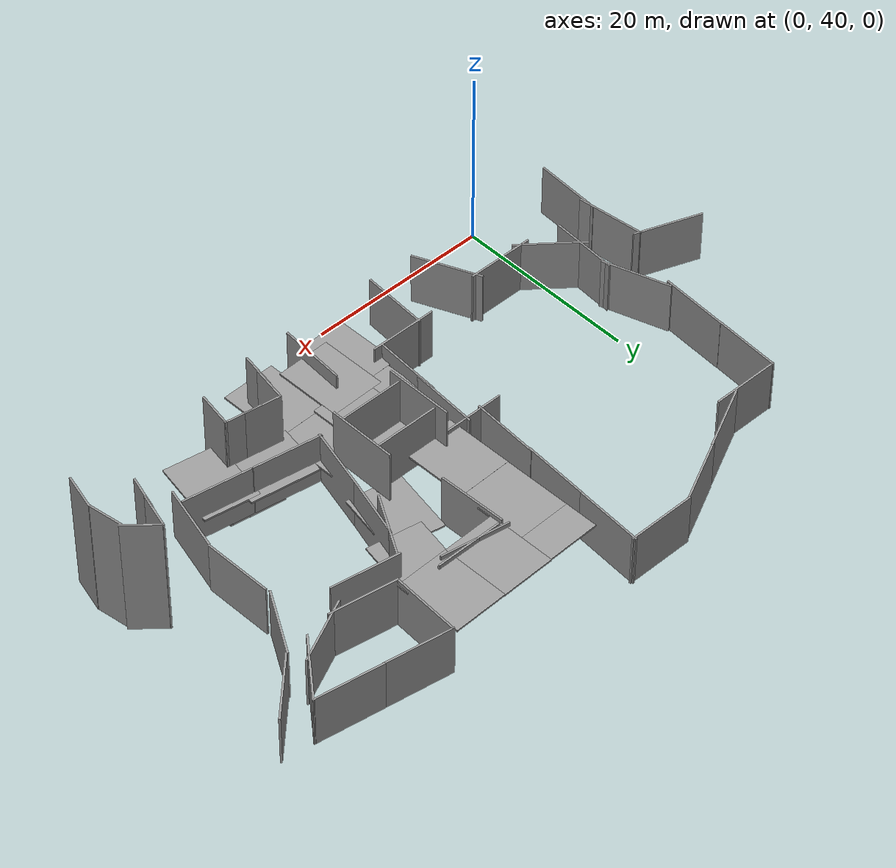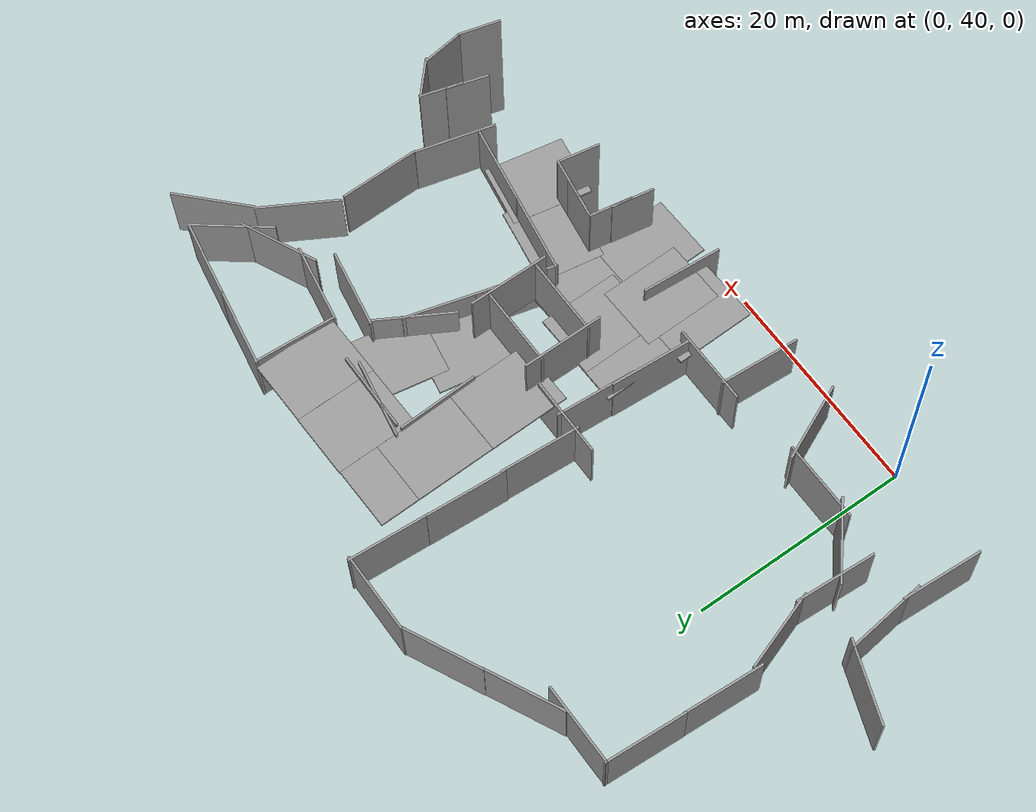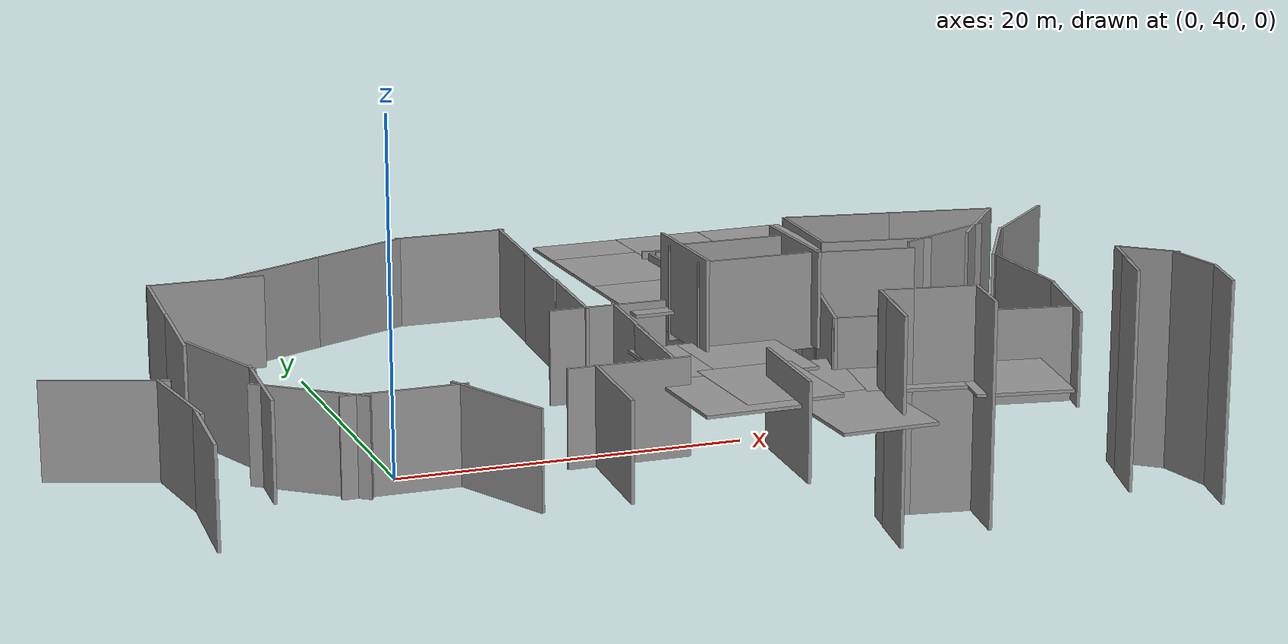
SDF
<sdf version="1.7">
 <world name="default">
  <model name="grey_wall_4">
   <static>1</static>
   <link name="link">
    <pose>0 0 1.4 0 -0 0</pose>
    <collision name="collision"><geometry><box><size>7.5 0.2 6</size></box></geometry></collision>
    <visual name="visual">
     <cast_shadows>0</cast_shadows>
     <geometry><box><size>7.5 0.2 6</size></box></geometry>
     <material>
      <script>
       <uri>model://grey_wall/materials/scripts</uri>
       <uri>model://grey_wall/materials/textures</uri>
       <name>vrc/grey_wall</name>
      </script>
     </material>
    </visual>
   </link>
   <pose>16.0009 47.1151 -1.36031 0 -0 0</pose>
  </model>
  <model name="grey_wall_4_clone">
   <static>1</static>
   <link name="link">
    <pose>0 0 1.4 0 -0 0</pose>
    <collision name="collision"><geometry><box><size>7.5 0.2 6</size></box></geometry></collision>
    <visual name="visual">
     <cast_shadows>0</cast_shadows>
     <geometry><box><size>7.5 0.2 6</size></box></geometry>
     <material>
      <script>
       <uri>model://grey_wall/materials/scripts</uri>
       <uri>model://grey_wall/materials/textures</uri>
       <name>vrc/grey_wall</name>
      </script>
     </material>
    </visual>
   </link>
   <pose>19.1102 59.5367 -1.36031 0 -0 0</pose>
  </model>
  <model name="grey_wall_4_clone_1">
   <static>1</static>
   <link name="link">
    <pose>0 0 1.4 0 -0 0</pose>
    <collision name="collision"><geometry><box><size>7.5 0.2 6</size></box></geometry></collision>
    <visual name="visual">
     <cast_shadows>0</cast_shadows>
     <geometry><box><size>7.5 0.2 6</size></box></geometry>
     <material>
      <script>
       <uri>model://grey_wall/materials/scripts</uri>
       <uri>model://grey_wall/materials/textures</uri>
       <name>vrc/grey_wall</name>
      </script>
     </material>
    </visual>
   </link>
   <pose>2.43285 46.2968 -1.36031 0 -0 0</pose>
  </model>
  <model name="grey_wall_4_clone_2">
   <static>1</static>
   <link name="link">
    <pose>0 0 1.4 0 -0 0</pose>
    <collision name="collision"><geometry><box><size>7.5 0.2 6</size></box></geometry></collision>
    <visual name="visual">
     <cast_shadows>0</cast_shadows>
     <geometry><box><size>7.5 0.2 6</size></box></geometry>
     <material>
      <script>
       <uri>model://grey_wall/materials/scripts</uri>
       <uri>model://grey_wall/materials/textures</uri>
       <name>vrc/grey_wall</name>
      </script>
     </material>
    </visual>
   </link>
   <pose>15.4871 80.6091 -1.36031 0 -0 0</pose>
  </model>
  <model name="grey_wall_4_clone_3">
   <static>1</static>
   <link name="link">
    <pose>0 0 1.4 0 -0 0</pose>
    <collision name="collision"><geometry><box><size>7.5 0.2 6</size></box></geometry></collision>
    <visual name="visual">
     <cast_shadows>0</cast_shadows>
     <geometry><box><size>7.5 0.2 6</size></box></geometry>
     <material>
      <script>
       <uri>model://grey_wall/materials/scripts</uri>
       <uri>model://grey_wall/materials/textures</uri>
       <name>vrc/grey_wall</name>
      </script>
     </material>
    </visual>
   </link>
   <pose>8.62408 78.9708 -1.36031 0 -0 0.453296</pose>
  </model>
  <model name="grey_wall_4_clone_4">
   <static>1</static>
   <link name="link">
    <pose>0 0 1.4 0 -0 0</pose>
    <collision name="collision"><geometry><box><size>7.5 0.2 6</size></box></geometry></collision>
    <visual name="visual">
     <cast_shadows>0</cast_shadows>
     <geometry><box><size>7.5 0.2 6</size></box></geometry>
     <material>
      <script>
       <uri>model://grey_wall/materials/scripts</uri>
       <uri>model://grey_wall/materials/textures</uri>
       <name>vrc/grey_wall</name>
      </script>
     </material>
    </visual>
   </link>
   <pose>-2.54891 74.0503 -1.36031 0 -0 0</pose>
  </model>
  <model name="grey_wall_4_clone_5">
   <static>1</static>
   <link name="link">
    <pose>0 0 1.4 0 -0 0</pose>
    <collision name="collision"><geometry><box><size>7.5 0.2 6</size></box></geometry></collision>
    <visual name="visual">
     <cast_shadows>0</cast_shadows>
     <geometry><box><size>7.5 0.2 6</size></box></geometry>
     <material>
      <script>
       <uri>model://grey_wall/materials/scripts</uri>
       <uri>model://grey_wall/materials/textures</uri>
       <name>vrc/grey_wall</name>
      </script>
     </material>
    </visual>
   </link>
   <pose>18.7594 77.124 -1.36031 0 0 -1.63235</pose>
  </model>
  <model name="grey_wall_4_clone_5_clone">
   <static>1</static>
   <link name="link">
    <pose>0 0 1.4 0 -0 0</pose>
    <collision name="collision"><geometry><box><size>7.5 0.2 6</size></box></geometry></collision>
    <visual name="visual">
     <cast_shadows>0</cast_shadows>
     <geometry><box><size>7.5 0.2 6</size></box></geometry>
     <material>
      <script>
       <uri>model://grey_wall/materials/scripts</uri>
       <uri>model://grey_wall/materials/textures</uri>
       <name>vrc/grey_wall</name>
      </script>
     </material>
    </visual>
   </link>
   <pose>18.2913 69.9734 -1.36031 0 0 -1.63235</pose>
  </model>
  <model name="grey_wall_4_clone_5_clone_0">
   <static>1</static>
   <link name="link">
    <pose>0 0 1.4 0 -0 0</pose>
    <collision name="collision"><geometry><box><size>7.5 0.2 6</size></box></geometry></collision>
    <visual name="visual">
     <cast_shadows>0</cast_shadows>
     <geometry><box><size>7.5 0.2 6</size></box></geometry>
     <material>
      <script>
       <uri>model://grey_wall/materials/scripts</uri>
       <uri>model://grey_wall/materials/textures</uri>
       <name>vrc/grey_wall</name>
      </script>
     </material>
    </visual>
   </link>
   <pose>17.9317 62.9217 -1.36031 0 0 -1.63235</pose>
  </model>
  <model name="grey_wall_4_clone_5_clone_1">
   <static>1</static>
   <link name="link">
    <pose>0 0 1.4 0 -0 0</pose>
    <collision name="collision"><geometry><box><size>7.5 0.2 6</size></box></geometry></collision>
    <visual name="visual">
     <cast_shadows>0</cast_shadows>
     <geometry><box><size>7.5 0.2 6</size></box></geometry>
     <material>
      <script>
       <uri>model://grey_wall/materials/scripts</uri>
       <uri>model://grey_wall/materials/textures</uri>
       <name>vrc/grey_wall</name>
      </script>
     </material>
    </visual>
   </link>
   <pose>18.9558 50.955 -1.36031 0 0 -1.63235</pose>
  </model>
  <model name="grey_wall_4_clone_5_clone_2">
   <static>1</static>
   <link name="link">
    <pose>0 0 1.4 0 -0 0</pose>
    <collision name="collision"><geometry><box><size>7.5 0.2 6</size></box></geometry></collision>
    <visual name="visual">
     <cast_shadows>0</cast_shadows>
     <geometry><box><size>7.5 0.2 6</size></box></geometry>
     <material>
      <script>
       <uri>model://grey_wall/materials/scripts</uri>
       <uri>model://grey_wall/materials/textures</uri>
       <name>vrc/grey_wall</name>
      </script>
     </material>
    </visual>
   </link>
   <pose>19.3647 56.2613 -1.36031 0 0 -1.63235</pose>
  </model>
  <model name="grey_wall_4_clone_5_clone_3">
   <static>1</static>
   <link name="link">
    <pose>0 0 1.4 0 -0 0</pose>
    <collision name="collision"><geometry><box><size>7.5 0.2 6</size></box></geometry></collision>
    <visual name="visual">
     <cast_shadows>0</cast_shadows>
     <geometry><box><size>7.5 0.2 6</size></box></geometry>
     <material>
      <script>
       <uri>model://grey_wall/materials/scripts</uri>
       <uri>model://grey_wall/materials/textures</uri>
       <name>vrc/grey_wall</name>
      </script>
     </material>
    </visual>
   </link>
   <pose>13.8066 43.613 -1.36031 0 0 -1.63235</pose>
  </model>
  <model name="grey_wall_4_clone_5_clone_4">
   <static>1</static>
   <link name="link">
    <pose>0 0 1.4 0 -0 0</pose>
    <collision name="collision"><geometry><box><size>7.5 0.2 6</size></box></geometry></collision>
    <visual name="visual">
     <cast_shadows>0</cast_shadows>
     <geometry><box><size>7.5 0.2 6</size></box></geometry>
     <material>
      <script>
       <uri>model://grey_wall/materials/scripts</uri>
       <uri>model://grey_wall/materials/textures</uri>
       <name>vrc/grey_wall</name>
      </script>
     </material>
    </visual>
   </link>
   <pose>6.91976 43.5617 -1.36031 0 0 -1.15044</pose>
  </model>
  <model name="grey_wall_4_clone_5_clone_5">
   <static>1</static>
   <link name="link">
    <pose>0 0 1.4 0 -0 0</pose>
    <collision name="collision"><geometry><box><size>7.5 0.2 6</size></box></geometry></collision>
    <visual name="visual">
     <cast_shadows>0</cast_shadows>
     <geometry><box><size>7.5 0.2 6</size></box></geometry>
     <material>
      <script>
       <uri>model://grey_wall/materials/scripts</uri>
       <uri>model://grey_wall/materials/textures</uri>
       <name>vrc/grey_wall</name>
      </script>
     </material>
    </visual>
   </link>
   <pose>-6.39185 70.4672 -1.36031 0 0 -1.63235</pose>
  </model>
  <model name="grey_wall_4_clone_5_clone_6">
   <static>1</static>
   <link name="link">
    <pose>0 0 1.4 0 -0 0</pose>
    <collision name="collision"><geometry><box><size>7.5 0.2 6</size></box></geometry></collision>
    <visual name="visual">
     <cast_shadows>0</cast_shadows>
     <geometry><box><size>7.5 0.2 6</size></box></geometry>
     <material>
      <script>
       <uri>model://grey_wall/materials/scripts</uri>
       <uri>model://grey_wall/materials/textures</uri>
       <name>vrc/grey_wall</name>
      </script>
     </material>
    </visual>
   </link>
   <pose>-6.80635 63.2942 -1.36031 0 0 -1.63235</pose>
  </model>
  <model name="grey_wall_4_clone_5_clone_7">
   <static>1</static>
   <link name="link">
    <pose>0 0 1.4 0 -0 0</pose>
    <collision name="collision"><geometry><box><size>7.5 0.2 6</size></box></geometry></collision>
    <visual name="visual">
     <cast_shadows>0</cast_shadows>
     <geometry><box><size>7.5 0.2 6</size></box></geometry>
     <material>
      <script>
       <uri>model://grey_wall/materials/scripts</uri>
       <uri>model://grey_wall/materials/textures</uri>
       <name>vrc/grey_wall</name>
      </script>
     </material>
    </visual>
   </link>
   <pose>-5.58672 56.7985 -1.36031 0 0 -1.24275</pose>
  </model>
  <model name="grey_wall_4_clone_5_clone_8">
   <static>1</static>
   <link name="link">
    <pose>0 0 1.4 0 -0 0</pose>
    <collision name="collision"><geometry><box><size>7.5 0.2 6</size></box></geometry></collision>
    <visual name="visual">
     <cast_shadows>0</cast_shadows>
     <geometry><box><size>7.5 0.2 6</size></box></geometry>
     <material>
      <script>
       <uri>model://grey_wall/materials/scripts</uri>
       <uri>model://grey_wall/materials/textures</uri>
       <name>vrc/grey_wall</name>
      </script>
     </material>
    </visual>
   </link>
   <pose>-4.72145 50.5528 -1.36031 0 0 -1.63235</pose>
  </model>
  <model name="grey_wall_4_clone_5_clone_9">
   <static>1</static>
   <link name="link">
    <pose>0 0 1.4 0 -0 0</pose>
    <collision name="collision"><geometry><box><size>7.5 0.2 6</size></box></geometry></collision>
    <visual name="visual">
     <cast_shadows>0</cast_shadows>
     <geometry><box><size>7.5 0.2 6</size></box></geometry>
     <material>
      <script>
       <uri>model://grey_wall/materials/scripts</uri>
       <uri>model://grey_wall/materials/textures</uri>
       <name>vrc/grey_wall</name>
      </script>
     </material>
    </visual>
   </link>
   <pose>-2.54426 48.1501 -1.36031 0 0 -0.694859</pose>
  </model>
  <model name="grey_wall_4_clone_5_clone_15">
   <static>1</static>
   <link name="link">
    <pose>0 0 1.4 0 -0 0</pose>
    <collision name="collision"><geometry><box><size>7.5 0.2 6</size></box></geometry></collision>
    <visual name="visual">
     <cast_shadows>0</cast_shadows>
     <geometry><box><size>7.5 0.2 6</size></box></geometry>
     <material>
      <script>
       <uri>model://grey_wall/materials/scripts</uri>
       <uri>model://grey_wall/materials/textures</uri>
       <name>vrc/grey_wall</name>
      </script>
     </material>
    </visual>
   </link>
   <pose>24.4072 43.5806 -1.36031 0 0 -1.63235</pose>
  </model>
  <model name="grey_wall_4_clone_0_clone_0_clone_5">
   <static>1</static>
   <link name="link">
    <pose>0 0 1.4 0 -0 0</pose>
    <collision name="collision"><geometry><box><size>7.5 0.2 6</size></box></geometry></collision>
    <visual name="visual">
     <cast_shadows>0</cast_shadows>
     <geometry><box><size>7.5 0.2 6</size></box></geometry>
     <material>
      <script>
       <uri>model://grey_wall/materials/scripts</uri>
       <uri>model://grey_wall/materials/textures</uri>
       <name>vrc/grey_wall</name>
      </script>
     </material>
    </visual>
   </link>
   <pose>-12.8399 53.9974 -1.36031 0 0 -0.351253</pose>
  </model>
  <model name="grey_wall_4_clone_0_clone_1_clone_1">
   <static>1</static>
   <link name="link">
    <pose>0 0 1.4 0 -0 0</pose>
    <collision name="collision"><geometry><box><size>7.5 0.2 6</size></box></geometry></collision>
    <visual name="visual">
     <cast_shadows>0</cast_shadows>
     <geometry><box><size>7.5 0.2 6</size></box></geometry>
     <material>
      <script>
       <uri>model://grey_wall/materials/scripts</uri>
       <uri>model://grey_wall/materials/textures</uri>
       <name>vrc/grey_wall</name>
      </script>
     </material>
    </visual>
   </link>
   <pose>-9.56386 49.3439 -1.36031 0 0 -1.45172</pose>
  </model>
  <model name="grey_wall_4_clone_5_clone_3_clone">
   <static>1</static>
   <link name="link">
    <pose>0 0 1.4 0 -0 0</pose>
    <collision name="collision"><geometry><box><size>7.5 0.2 6</size></box></geometry></collision>
    <visual name="visual">
     <cast_shadows>0</cast_shadows>
     <geometry><box><size>7.5 0.2 6</size></box></geometry>
     <material>
      <script>
       <uri>model://grey_wall/materials/scripts</uri>
       <uri>model://grey_wall/materials/textures</uri>
       <name>vrc/grey_wall</name>
      </script>
     </material>
    </visual>
   </link>
   <pose>-9.49011 43.6181 -1.36031 0 0 -1.63235</pose>
  </model>
  <model name="grey_wall_4_clone_5_clone_0_clone">
   <static>1</static>
   <link name="link">
    <pose>0 0 1.4 0 -0 0</pose>
    <collision name="collision"><geometry><box><size>7.5 0.2 6</size></box></geometry></collision>
    <visual name="visual">
     <cast_shadows>0</cast_shadows>
     <geometry><box><size>7.5 0.2 6</size></box></geometry>
     <material>
      <script>
       <uri>model://grey_wall/materials/scripts</uri>
       <uri>model://grey_wall/materials/textures</uri>
       <name>vrc/grey_wall</name>
      </script>
     </material>
    </visual>
   </link>
   <pose>46.3083 51.5827 -1.36031 0 0 -1.81447</pose>
  </model>
  <model name="grey_wall_4_clone_5_clone_0_clone_clone">
   <static>1</static>
   <link name="link">
    <pose>0 0 1.4 0 -0 0</pose>
    <collision name="collision"><geometry><box><size>7.5 0.2 6</size></box></geometry></collision>
    <visual name="visual">
     <cast_shadows>0</cast_shadows>
     <geometry><box><size>7.5 0.2 6</size></box></geometry>
     <material>
      <script>
       <uri>model://grey_wall/materials/scripts</uri>
       <uri>model://grey_wall/materials/textures</uri>
       <name>vrc/grey_wall</name>
      </script>
     </material>
    </visual>
   </link>
   <pose>31.8033 55.374 -1.36031 0 0 -1.81447</pose>
  </model>
  <model name="grey_wall_4_clone_5_clone_0_clone_clone_0">
   <static>1</static>
   <link name="link">
    <pose>0 0 1.4 0 -0 0</pose>
    <collision name="collision"><geometry><box><size>7.5 0.2 6</size></box></geometry></collision>
    <visual name="visual">
     <cast_shadows>0</cast_shadows>
     <geometry><box><size>7.5 0.2 6</size></box></geometry>
     <material>
      <script>
       <uri>model://grey_wall/materials/scripts</uri>
       <uri>model://grey_wall/materials/textures</uri>
       <name>vrc/grey_wall</name>
      </script>
     </material>
    </visual>
   </link>
   <pose>33.4296 61.6318 -1.36031 0 0 -1.83467</pose>
  </model>
  <model name="grey_wall_4_clone_5_clone_0_clone_clone_2">
   <static>1</static>
   <link name="link">
    <pose>0 0 1.4 0 -0 0</pose>
    <collision name="collision"><geometry><box><size>7.5 0.2 6</size></box></geometry></collision>
    <visual name="visual">
     <cast_shadows>0</cast_shadows>
     <geometry><box><size>7.5 0.2 6</size></box></geometry>
     <material>
      <script>
       <uri>model://grey_wall/materials/scripts</uri>
       <uri>model://grey_wall/materials/textures</uri>
       <name>vrc/grey_wall</name>
      </script>
     </material>
    </visual>
   </link>
   <pose>48.7352 66.2029 -1.36031 0 0 -2.08831</pose>
  </model>
  <model name="grey_wall_4_clone_5_clone_0_clone_clone_0_clone">
   <static>1</static>
   <link name="link">
    <pose>0 0 1.4 0 -0 0</pose>
    <collision name="collision"><geometry><box><size>7.5 0.2 6</size></box></geometry></collision>
    <visual name="visual">
     <cast_shadows>0</cast_shadows>
     <geometry><box><size>7.5 0.2 6</size></box></geometry>
     <material>
      <script>
       <uri>model://grey_wall/materials/scripts</uri>
       <uri>model://grey_wall/materials/textures</uri>
       <name>vrc/grey_wall</name>
      </script>
     </material>
    </visual>
   </link>
   <pose>47.1665 58.9116 -1.36031 0 0 -1.54099</pose>
  </model>
  <model name="grey_wall_4_clone_5_clone_0_clone_clone_1_clone_0">
   <static>1</static>
   <link name="link">
    <pose>0 0 1.4 0 -0 0</pose>
    <collision name="collision"><geometry><box><size>7.5 0.2 6</size></box></geometry></collision>
    <visual name="visual">
     <cast_shadows>0</cast_shadows>
     <geometry><box><size>7.5 0.2 6</size></box></geometry>
     <material>
      <script>
       <uri>model://grey_wall/materials/scripts</uri>
       <uri>model://grey_wall/materials/textures</uri>
       <name>vrc/grey_wall</name>
      </script>
     </material>
    </visual>
   </link>
   <pose>34.4569 51.3738 -1.36031 0 -0 2.97634</pose>
  </model>
  <model name="grey_wall_4_clone_5_clone_0_clone_clone_1_clone_1">
   <static>1</static>
   <link name="link">
    <pose>0 0 1.4 0 -0 0</pose>
    <collision name="collision"><geometry><box><size>7.5 0.2 6</size></box></geometry></collision>
    <visual name="visual">
     <cast_shadows>0</cast_shadows>
     <geometry><box><size>7.5 0.2 6</size></box></geometry>
     <material>
      <script>
       <uri>model://grey_wall/materials/scripts</uri>
       <uri>model://grey_wall/materials/textures</uri>
       <name>vrc/grey_wall</name>
      </script>
     </material>
    </visual>
   </link>
   <pose>41.9347 50.1282 -1.36031 0 -0 2.97634</pose>
  </model>
  <model name="grey_wall_4_clone_5_clone_0_clone_clone_1_clone_clone">
   <static>1</static>
   <link name="link">
    <pose>0 0 1.4 0 -0 0</pose>
    <collision name="collision"><geometry><box><size>7.5 0.2 6</size></box></geometry></collision>
    <visual name="visual">
     <cast_shadows>0</cast_shadows>
     <geometry><box><size>7.5 0.2 6</size></box></geometry>
     <material>
      <script>
       <uri>model://grey_wall/materials/scripts</uri>
       <uri>model://grey_wall/materials/textures</uri>
       <name>vrc/grey_wall</name>
      </script>
     </material>
    </visual>
   </link>
   <pose>48.8616 75.4431 -1.36031 0 -0 2.97634</pose>
  </model>
  <model name="grey_wall_4_clone_5_clone_0_clone_clone_1_clone_clone_0">
   <static>1</static>
   <link name="link">
    <pose>0 0 1.4 0 -0 0</pose>
    <collision name="collision"><geometry><box><size>7.5 0.2 6</size></box></geometry></collision>
    <visual name="visual">
     <cast_shadows>0</cast_shadows>
     <geometry><box><size>7.5 0.2 6</size></box></geometry>
     <material>
      <script>
       <uri>model://grey_wall/materials/scripts</uri>
       <uri>model://grey_wall/materials/textures</uri>
       <name>vrc/grey_wall</name>
      </script>
     </material>
    </visual>
   </link>
   <pose>41.6947 76.6235 -1.36031 0 -0 2.97634</pose>
  </model>
  <model name="grey_wall_4_clone_5_clone_0_clone_clone_3">
   <static>1</static>
   <link name="link">
    <pose>0 0 1.4 0 -0 0</pose>
    <collision name="collision"><geometry><box><size>7.5 0.2 6</size></box></geometry></collision>
    <visual name="visual">
     <cast_shadows>0</cast_shadows>
     <geometry><box><size>7.5 0.2 6</size></box></geometry>
     <material>
      <script>
       <uri>model://grey_wall/materials/scripts</uri>
       <uri>model://grey_wall/materials/textures</uri>
       <name>vrc/grey_wall</name>
      </script>
     </material>
    </visual>
   </link>
   <pose>37.965 73.5414 -1.36031 0 0 -1.61772</pose>
  </model>
  <model name="grey_wall_4_clone_5_clone_0_clone_clone_1_clone_clone_0_clone">
   <static>1</static>
   <link name="link">
    <pose>0 0 1.4 0 -0 0</pose>
    <collision name="collision"><geometry><box><size>7.5 0.2 6</size></box></geometry></collision>
    <visual name="visual">
     <cast_shadows>0</cast_shadows>
     <geometry><box><size>7.5 0.2 6</size></box></geometry>
     <material>
      <script>
       <uri>model://grey_wall/materials/scripts</uri>
       <uri>model://grey_wall/materials/textures</uri>
       <name>vrc/grey_wall</name>
      </script>
     </material>
    </visual>
   </link>
   <pose>41.355 69.1346 -1.36031 0 -0 2.97634</pose>
  </model>
  <model name="grey_wall_4_clone_5_clone_0_clone_clone_0_clone_0">
   <static>1</static>
   <link name="link">
    <pose>0 0 1.4 0 -0 0</pose>
    <collision name="collision"><geometry><box><size>7.5 0.2 6</size></box></geometry></collision>
    <visual name="visual">
     <cast_shadows>0</cast_shadows>
     <geometry><box><size>7.5 0.2 6</size></box></geometry>
     <material>
      <script>
       <uri>model://grey_wall/materials/scripts</uri>
       <uri>model://grey_wall/materials/textures</uri>
       <name>vrc/grey_wall</name>
      </script>
     </material>
    </visual>
   </link>
   <pose>50.2087 71.9552 -1.36031 0 0 -2.23222</pose>
  </model>
  <model name="grey_wall_4_clone_5_clone_0_clone_clone_0_clone_1">
   <static>1</static>
   <link name="link">
    <pose>0 0 1.4 0 -0 0</pose>
    <collision name="collision"><geometry><box><size>7.5 0.2 6</size></box></geometry></collision>
    <visual name="visual">
     <cast_shadows>0</cast_shadows>
     <geometry><box><size>7.5 0.2 6</size></box></geometry>
     <material>
      <script>
       <uri>model://grey_wall/materials/scripts</uri>
       <uri>model://grey_wall/materials/textures</uri>
       <name>vrc/grey_wall</name>
      </script>
     </material>
    </visual>
   </link>
   <pose>46.5803 69.5804 -1.36031 0 0 -2.70486</pose>
  </model>
  <model name="grey_wall_5_clone_0_clone_clone_1">
   <static>1</static>
   <link name="link">
    <pose>0 0 1.4 0 -0 0</pose>
    <collision name="collision"><geometry><box><size>4 0.2 14</size></box></geometry></collision>
    <visual name="visual">
     <cast_shadows>0</cast_shadows>
     <geometry><box><size>4 0.2 14</size></box></geometry>
     <material>
      <script>
       <uri>model://grey_wall/materials/scripts</uri>
       <uri>model://grey_wall/materials/textures</uri>
       <name>vrc/grey_wall</name>
      </script>
     </material>
    </visual>
   </link>
   <pose>35.9221 47.0435 -2.67193 0 0 -0.158292</pose>
  </model>
  <model name="grey_wall_5_clone_0_clone_clone_2">
   <static>1</static>
   <link name="link">
    <pose>0 0 1.4 0 -0 0</pose>
    <collision name="collision"><geometry><box><size>4 0.2 14</size></box></geometry></collision>
    <visual name="visual">
     <cast_shadows>0</cast_shadows>
     <geometry><box><size>4 0.2 14</size></box></geometry>
     <material>
      <script>
       <uri>model://grey_wall/materials/scripts</uri>
       <uri>model://grey_wall/materials/textures</uri>
       <name>vrc/grey_wall</name>
      </script>
     </material>
    </visual>
   </link>
   <pose>33.8085 47.3815 -2.67193 0 0 -0.158292</pose>
  </model>
  <model name="grey_wall_5_clone_0_clone_0_clone_clone">
   <static>1</static>
   <link name="link">
    <pose>0 0 1.4 0 -0 0</pose>
    <collision name="collision"><geometry><box><size>4 0.2 14</size></box></geometry></collision>
    <visual name="visual">
     <cast_shadows>0</cast_shadows>
     <geometry><box><size>4 0.2 14</size></box></geometry>
     <material>
      <script>
       <uri>model://grey_wall/materials/scripts</uri>
       <uri>model://grey_wall/materials/textures</uri>
       <name>vrc/grey_wall</name>
      </script>
     </material>
    </visual>
   </link>
   <pose>37.4748 44.8738 -2.67193 0 -0 1.40604</pose>
  </model>
  <model name="grey_wall_5_clone_0_clone_0_clone_clone_1">
   <static>1</static>
   <link name="link">
    <pose>0 0 1.4 0 -0 0</pose>
    <collision name="collision"><geometry><box><size>4 0.2 14</size></box></geometry></collision>
    <visual name="visual">
     <cast_shadows>0</cast_shadows>
     <geometry><box><size>4 0.2 14</size></box></geometry>
     <material>
      <script>
       <uri>model://grey_wall/materials/scripts</uri>
       <uri>model://grey_wall/materials/textures</uri>
       <name>vrc/grey_wall</name>
      </script>
     </material>
    </visual>
   </link>
   <pose>31.6023 45.7282 -2.67193 0 -0 1.40604</pose>
  </model>
  <model name="grey_wall_5_clone_0_clone_0_clone_clone_2">
   <static>1</static>
   <link name="link">
    <pose>0 0 1.4 0 -0 0</pose>
    <collision name="collision"><geometry><box><size>4 0.2 14</size></box></geometry></collision>
    <visual name="visual">
     <cast_shadows>0</cast_shadows>
     <geometry><box><size>4 0.2 14</size></box></geometry>
     <material>
      <script>
       <uri>model://grey_wall/materials/scripts</uri>
       <uri>model://grey_wall/materials/textures</uri>
       <name>vrc/grey_wall</name>
      </script>
     </material>
    </visual>
   </link>
   <pose>31.2212 43.756 -2.67193 0 -0 1.40604</pose>
  </model>
  <model name="grey_wall_5_clone_0_clone_0_clone_clone_0_clone_1">
   <static>1</static>
   <link name="link">
    <pose>0 0 1.4 0 -0 0</pose>
    <collision name="collision"><geometry><box><size>4 0.2 14</size></box></geometry></collision>
    <visual name="visual">
     <cast_shadows>0</cast_shadows>
     <geometry><box><size>4 0.2 14</size></box></geometry>
     <material>
      <script>
       <uri>model://grey_wall/materials/scripts</uri>
       <uri>model://grey_wall/materials/textures</uri>
       <name>vrc/grey_wall</name>
      </script>
     </material>
    </visual>
   </link>
   <pose>48.9326 48.3638 -2.67193 0 -0 1.30147</pose>
  </model>
  <model name="grey_wall_5_clone_0_clone_0_clone_clone_0_clone_2">
   <static>1</static>
   <link name="link">
    <pose>0 0 1.4 0 -0 0</pose>
    <collision name="collision"><geometry><box><size>4 0.2 14</size></box></geometry></collision>
    <visual name="visual">
     <cast_shadows>0</cast_shadows>
     <geometry><box><size>4 0.2 14</size></box></geometry>
     <material>
      <script>
       <uri>model://grey_wall/materials/scripts</uri>
       <uri>model://grey_wall/materials/textures</uri>
       <name>vrc/grey_wall</name>
      </script>
     </material>
    </visual>
   </link>
   <pose>49.6105 50.6394 -2.67193 0 -0 1.30662</pose>
  </model>
  <model name="grey_wall_5_clone_0_clone_0_clone_clone_0_clone_3">
   <static>1</static>
   <link name="link">
    <pose>0 0 1.4 0 -0 0</pose>
    <collision name="collision"><geometry><box><size>4 0.2 14</size></box></geometry></collision>
    <visual name="visual">
     <cast_shadows>0</cast_shadows>
     <geometry><box><size>4 0.2 14</size></box></geometry>
     <material>
      <script>
       <uri>model://grey_wall/materials/scripts</uri>
       <uri>model://grey_wall/materials/textures</uri>
       <name>vrc/grey_wall</name>
      </script>
     </material>
    </visual>
   </link>
   <pose>52.989 44.2847 -2.67193 0 -0 1.3289</pose>
  </model>
  <model name="grey_wall_5_clone_0_clone_0_clone_clone_0_clone_7">
   <static>1</static>
   <link name="link">
    <pose>0 0 1.4 0 -0 0</pose>
    <collision name="collision"><geometry><box><size>4 0.2 14</size></box></geometry></collision>
    <visual name="visual">
     <cast_shadows>0</cast_shadows>
     <geometry><box><size>4 0.2 14</size></box></geometry>
     <material>
      <script>
       <uri>model://grey_wall/materials/scripts</uri>
       <uri>model://grey_wall/materials/textures</uri>
       <name>vrc/grey_wall</name>
      </script>
     </material>
    </visual>
   </link>
   <pose>51.6057 51.1242 -2.67193 0 -0 2.41549</pose>
  </model>
  <model name="grey_wall_5_clone_0_clone_0_clone_clone_0_clone_8">
   <static>1</static>
   <link name="link">
    <pose>0 0 1.4 0 -0 0</pose>
    <collision name="collision"><geometry><box><size>4 0.2 14</size></box></geometry></collision>
    <visual name="visual">
     <cast_shadows>0</cast_shadows>
     <geometry><box><size>4 0.2 14</size></box></geometry>
     <material>
      <script>
       <uri>model://grey_wall/materials/scripts</uri>
       <uri>model://grey_wall/materials/textures</uri>
       <name>vrc/grey_wall</name>
      </script>
     </material>
    </visual>
   </link>
   <pose>53.1173 48.0559 -2.67193 0 -0 1.73153</pose>
  </model>
  <model name="grey_wall_4_clone_3_clone">
   <static>1</static>
   <link name="link">
    <pose>0 0 1.4 0 -0 0</pose>
    <collision name="collision"><geometry><box><size>7.5 0.2 6</size></box></geometry></collision>
    <visual name="visual">
     <cast_shadows>0</cast_shadows>
     <geometry><box><size>7.5 0.2 6</size></box></geometry>
     <material>
      <script>
       <uri>model://grey_wall/materials/scripts</uri>
       <uri>model://grey_wall/materials/textures</uri>
       <name>vrc/grey_wall</name>
      </script>
     </material>
    </visual>
   </link>
   <pose>2.17526 75.7871 -1.36031 0 -0 0.453296</pose>
  </model>
  <model name="grey_wall_4_clone_5_clone_0_clone_clone_clone">
   <static>1</static>
   <link name="link">
    <pose>0 0 1.4 0 -0 0</pose>
    <collision name="collision"><geometry><box><size>7.5 0.2 6</size></box></geometry></collision>
    <visual name="visual">
     <cast_shadows>0</cast_shadows>
     <geometry><box><size>7.5 0.2 6</size></box></geometry>
     <material>
      <script>
       <uri>model://grey_wall/materials/scripts</uri>
       <uri>model://grey_wall/materials/textures</uri>
       <name>vrc/grey_wall</name>
      </script>
     </material>
    </visual>
   </link>
   <pose>26.4939 51.6646 1.26005 1.57003 0.000212 -1.54472</pose>
  </model>
  <model name="grey_wall_4_clone_5_clone_0_clone_clone_clone_clone">
   <static>1</static>
   <link name="link">
    <pose>0 0 1.4 0 -0 0</pose>
    <collision name="collision"><geometry><box><size>7.5 0.2 6</size></box></geometry></collision>
    <visual name="visual">
     <cast_shadows>0</cast_shadows>
     <geometry><box><size>7.5 0.2 6</size></box></geometry>
     <material>
      <script>
       <uri>model://grey_wall/materials/scripts</uri>
       <uri>model://grey_wall/materials/textures</uri>
       <name>vrc/grey_wall</name>
      </script>
     </material>
    </visual>
   </link>
   <pose>25.5735 45.8921 1.26005 1.57003 0.000212 -1.54472</pose>
  </model>
  <model name="grey_wall_4_clone_5_clone_0_clone_clone_clone_clone_0">
   <static>1</static>
   <link name="link">
    <pose>0 0 1.4 0 -0 0</pose>
    <collision name="collision"><geometry><box><size>7.5 0.2 6</size></box></geometry></collision>
    <visual name="visual">
     <cast_shadows>0</cast_shadows>
     <geometry><box><size>7.5 0.2 6</size></box></geometry>
     <material>
      <script>
       <uri>model://grey_wall/materials/scripts</uri>
       <uri>model://grey_wall/materials/textures</uri>
       <name>vrc/grey_wall</name>
      </script>
     </material>
    </visual>
   </link>
   <pose>23.381 51.6348 1.26005 1.57003 0.000212 -1.54472</pose>
  </model>
  <model name="grey_wall_4_clone_5_clone_0_clone_clone_clone_clone_1">
   <static>1</static>
   <link name="link">
    <pose>0 0 1.4 0 -0 0</pose>
    <collision name="collision"><geometry><box><size>7.5 0.2 6</size></box></geometry></collision>
    <visual name="visual">
     <cast_shadows>0</cast_shadows>
     <geometry><box><size>7.5 0.2 6</size></box></geometry>
     <material>
      <script>
       <uri>model://grey_wall/materials/scripts</uri>
       <uri>model://grey_wall/materials/textures</uri>
       <name>vrc/grey_wall</name>
      </script>
     </material>
    </visual>
   </link>
   <pose>22.6419 44.7125 1.26005 1.57003 0.000212 -1.54472</pose>
  </model>
  <model name="grey_wall_4_clone_6">
   <static>1</static>
   <link name="link">
    <pose>0 0 1.4 0 -0 0</pose>
    <collision name="collision"><geometry><box><size>7.5 0.2 6</size></box></geometry></collision>
    <visual name="visual">
     <cast_shadows>0</cast_shadows>
     <geometry><box><size>7.5 0.2 6</size></box></geometry>
     <material>
      <script>
       <uri>model://grey_wall/materials/scripts</uri>
       <uri>model://grey_wall/materials/textures</uri>
       <name>vrc/grey_wall</name>
      </script>
     </material>
    </visual>
   </link>
   <pose>26.7469 54.387 2.20835 0 -0 0</pose>
  </model>
  <model name="grey_wall_4_clone_6_clone">
   <static>1</static>
   <link name="link">
    <pose>0 0 1.4 0 -0 0</pose>
    <collision name="collision"><geometry><box><size>7.5 0.2 6</size></box></geometry></collision>
    <visual name="visual">
     <cast_shadows>0</cast_shadows>
     <geometry><box><size>7.5 0.2 6</size></box></geometry>
     <material>
      <script>
       <uri>model://grey_wall/materials/scripts</uri>
       <uri>model://grey_wall/materials/textures</uri>
       <name>vrc/grey_wall</name>
      </script>
     </material>
    </visual>
   </link>
   <pose>26.6661 59.0631 2.18258 0 -0 0</pose>
  </model>
  <model name="grey_wall_4_clone_6_clone_clone">
   <static>1</static>
   <link name="link">
    <pose>0 0 1.4 0 -0 0</pose>
    <collision name="collision"><geometry><box><size>7.5 0.2 6</size></box></geometry></collision>
    <visual name="visual">
     <cast_shadows>0</cast_shadows>
     <geometry><box><size>7.5 0.2 6</size></box></geometry>
     <material>
      <script>
       <uri>model://grey_wall/materials/scripts</uri>
       <uri>model://grey_wall/materials/textures</uri>
       <name>vrc/grey_wall</name>
      </script>
     </material>
    </visual>
   </link>
   <pose>23.1312 56.876 2.60086 0 -0 1.58124</pose>
  </model>
  <model name="grey_wall_4_clone_6_clone_clone_clone">
   <static>1</static>
   <link name="link">
    <pose>0 0 1.4 0 -0 0</pose>
    <collision name="collision"><geometry><box><size>7.5 0.2 6</size></box></geometry></collision>
    <visual name="visual">
     <cast_shadows>0</cast_shadows>
     <geometry><box><size>7.5 0.2 6</size></box></geometry>
     <material>
      <script>
       <uri>model://grey_wall/materials/scripts</uri>
       <uri>model://grey_wall/materials/textures</uri>
       <name>vrc/grey_wall</name>
      </script>
     </material>
    </visual>
   </link>
   <pose>30.4145 57.0701 2.407 0 -0 1.58124</pose>
  </model>
  <model name="grey_wall_4_clone_5_clone_0_clone_clone_clone_clone_clone">
   <static>1</static>
   <link name="link">
    <pose>0 0 1.4 0 -0 0</pose>
    <collision name="collision"><geometry><box><size>7.5 0.2 6</size></box></geometry></collision>
    <visual name="visual">
     <cast_shadows>0</cast_shadows>
     <geometry><box><size>7.5 0.2 6</size></box></geometry>
     <material>
      <script>
       <uri>model://grey_wall/materials/scripts</uri>
       <uri>model://grey_wall/materials/textures</uri>
       <name>vrc/grey_wall</name>
      </script>
     </material>
    </visual>
   </link>
   <pose>24.8646 62.2276 2.46729 1.57003 0.000212 -1.54472</pose>
  </model>
  <model name="grey_wall_4_clone_5_clone_0_clone_clone_clone_clone_clone_0">
   <static>1</static>
   <link name="link">
    <pose>0 0 1.4 0 -0 0</pose>
    <collision name="collision"><geometry><box><size>7.5 0.2 6</size></box></geometry></collision>
    <visual name="visual">
     <cast_shadows>0</cast_shadows>
     <geometry><box><size>7.5 0.2 6</size></box></geometry>
     <material>
      <script>
       <uri>model://grey_wall/materials/scripts</uri>
       <uri>model://grey_wall/materials/textures</uri>
       <name>vrc/grey_wall</name>
      </script>
     </material>
    </visual>
   </link>
   <pose>24.6818 69.612 2.45852 1.57003 0.000212 -1.54472</pose>
  </model>
  <model name="grey_wall_4_clone_5_clone_0_clone_clone_clone_clone_clone_0_clone">
   <static>1</static>
   <link name="link">
    <pose>0 0 1.4 0 -0 0</pose>
    <collision name="collision"><geometry><box><size>7.5 0.2 6</size></box></geometry></collision>
    <visual name="visual">
     <cast_shadows>0</cast_shadows>
     <geometry><box><size>7.5 0.2 6</size></box></geometry>
     <material>
      <script>
       <uri>model://grey_wall/materials/scripts</uri>
       <uri>model://grey_wall/materials/textures</uri>
       <name>vrc/grey_wall</name>
      </script>
     </material>
    </visual>
   </link>
   <pose>24.5812 73.2783 2.45815 1.57003 0.000212 -1.54472</pose>
  </model>
  <model name="grey_wall_4_clone_5_clone_0_clone_0">
   <static>1</static>
   <link name="link">
    <pose>0 0 1.4 0 -0 0</pose>
    <collision name="collision"><geometry><box><size>7.5 0.2 6</size></box></geometry></collision>
    <visual name="visual">
     <cast_shadows>0</cast_shadows>
     <geometry><box><size>7.5 0.2 6</size></box></geometry>
     <material>
      <script>
       <uri>model://grey_wall/materials/scripts</uri>
       <uri>model://grey_wall/materials/textures</uri>
       <name>vrc/grey_wall</name>
      </script>
     </material>
    </visual>
   </link>
   <pose>26.2582 67.2254 -1.36031 0 0 -1.52532</pose>
  </model>
  <model name="grey_wall_4_clone_5_clone_0_clone_clone_1_clone_clone_0_clone_clone">
   <static>1</static>
   <link name="link">
    <pose>0 0 1.4 0 -0 0</pose>
    <collision name="collision"><geometry><box><size>7.5 0.2 6</size></box></geometry></collision>
    <visual name="visual">
     <cast_shadows>0</cast_shadows>
     <geometry><box><size>7.5 0.2 6</size></box></geometry>
     <material>
      <script>
       <uri>model://grey_wall/materials/scripts</uri>
       <uri>model://grey_wall/materials/textures</uri>
       <name>vrc/grey_wall</name>
      </script>
     </material>
    </visual>
   </link>
   <pose>29.4679 70.9818 -1.36031 0 -0 2.97634</pose>
  </model>
  <model name="grey_wall_4_clone_clone">
   <static>1</static>
   <link name="link">
    <pose>0 0 1.4 0 -0 0</pose>
    <collision name="collision"><geometry><box><size>7.5 0.2 6</size></box></geometry></collision>
    <visual name="visual">
     <cast_shadows>0</cast_shadows>
     <geometry><box><size>7.5 0.2 6</size></box></geometry>
     <material>
      <script>
       <uri>model://grey_wall/materials/scripts</uri>
       <uri>model://grey_wall/materials/textures</uri>
       <name>vrc/grey_wall</name>
      </script>
     </material>
    </visual>
   </link>
   <pose>30.2876 71.0495 -1.36031 0 -0 0</pose>
  </model>
  <model name="grey_wall_4_clone_5_clone_0_clone_clone_clone_clone_clone_0_clone_clone">
   <static>1</static>
   <link name="link">
    <pose>0 0 1.4 0 -0 0</pose>
    <collision name="collision"><geometry><box><size>7.5 0.2 6</size></box></geometry></collision>
    <visual name="visual">
     <cast_shadows>0</cast_shadows>
     <geometry><box><size>7.5 0.2 6</size></box></geometry>
     <material>
      <script>
       <uri>model://grey_wall/materials/scripts</uri>
       <uri>model://grey_wall/materials/textures</uri>
       <name>vrc/grey_wall</name>
      </script>
     </material>
    </visual>
   </link>
   <pose>30.4094 73.485 2.45815 1.57003 0.000212 -1.54472</pose>
  </model>
  <model name="grey_wall_4_clone_5_clone_0_clone_clone_clone_clone_clone_0_clone_clone_0">
   <static>1</static>
   <link name="link">
    <pose>0 0 1.4 0 -0 0</pose>
    <collision name="collision"><geometry><box><size>7.5 0.2 6</size></box></geometry></collision>
    <visual name="visual">
     <cast_shadows>0</cast_shadows>
     <geometry><box><size>7.5 0.2 6</size></box></geometry>
     <material>
      <script>
       <uri>model://grey_wall/materials/scripts</uri>
       <uri>model://grey_wall/materials/textures</uri>
       <name>vrc/grey_wall</name>
      </script>
     </material>
    </visual>
   </link>
   <pose>36.2978 73.6156 2.45815 1.57003 0.000212 -1.54472</pose>
  </model>
  <model name="grey_wall_4_clone_5_clone_0_clone_clone_0_clone_0_clone">
   <static>1</static>
   <link name="link">
    <pose>0 0 1.4 0 -0 0</pose>
    <collision name="collision"><geometry><box><size>7.5 0.2 6</size></box></geometry></collision>
    <visual name="visual">
     <cast_shadows>0</cast_shadows>
     <geometry><box><size>7.5 0.2 6</size></box></geometry>
     <material>
      <script>
       <uri>model://grey_wall/materials/scripts</uri>
       <uri>model://grey_wall/materials/textures</uri>
       <name>vrc/grey_wall</name>
      </script>
     </material>
    </visual>
   </link>
   <pose>53.3327 71.8964 -1.36031 0 0 -2.37817</pose>
  </model>
  <model name="grey_wall_4_clone_5_clone_0_clone_clone_2_clone">
   <static>1</static>
   <link name="link">
    <pose>0 0 1.4 0 -0 0</pose>
    <collision name="collision"><geometry><box><size>7.5 0.2 6</size></box></geometry></collision>
    <visual name="visual">
     <cast_shadows>0</cast_shadows>
     <geometry><box><size>7.5 0.2 6</size></box></geometry>
     <material>
      <script>
       <uri>model://grey_wall/materials/scripts</uri>
       <uri>model://grey_wall/materials/textures</uri>
       <name>vrc/grey_wall</name>
      </script>
     </material>
    </visual>
   </link>
   <pose>33.9831 64.352 -1.36031 0 0 -2.08831</pose>
  </model>
  <model name="grey_wall_4_clone_5_clone_0_clone_clone_1_clone_0_clone">
   <static>1</static>
   <link name="link">
    <pose>0 0 1.4 0 -0 0</pose>
    <collision name="collision"><geometry><box><size>7.5 0.2 6</size></box></geometry></collision>
    <visual name="visual">
     <cast_shadows>0</cast_shadows>
     <geometry><box><size>7.5 0.2 6</size></box></geometry>
     <material>
      <script>
       <uri>model://grey_wall/materials/scripts</uri>
       <uri>model://grey_wall/materials/textures</uri>
       <name>vrc/grey_wall</name>
      </script>
     </material>
    </visual>
   </link>
   <pose>39.1454 66.9861 -1.36031 0 -0 2.97634</pose>
  </model>
  <model name="grey_wall_4_clone_5_clone_0_clone_clone_clone_clone_2">
   <static>1</static>
   <link name="link">
    <pose>0 0 1.4 0 -0 0</pose>
    <collision name="collision"><geometry><box><size>7.5 0.2 6</size></box></geometry></collision>
    <visual name="visual">
     <cast_shadows>0</cast_shadows>
     <geometry><box><size>7.5 0.2 6</size></box></geometry>
     <material>
      <script>
       <uri>model://grey_wall/materials/scripts</uri>
       <uri>model://grey_wall/materials/textures</uri>
       <name>vrc/grey_wall</name>
      </script>
     </material>
    </visual>
   </link>
   <pose>30.1183 50.5164 -0.252557 1.57003 0.000212 -1.54472</pose>
  </model>
  <model name="grey_wall_4_clone_5_clone_0_clone_clone_clone_clone_2_clone">
   <static>1</static>
   <link name="link">
    <pose>0 0 1.4 0 -0 0</pose>
    <collision name="collision"><geometry><box><size>7.5 0.2 6</size></box></geometry></collision>
    <visual name="visual">
     <cast_shadows>0</cast_shadows>
     <geometry><box><size>7.5 0.2 6</size></box></geometry>
     <material>
      <script>
       <uri>model://grey_wall/materials/scripts</uri>
       <uri>model://grey_wall/materials/textures</uri>
       <name>vrc/grey_wall</name>
      </script>
     </material>
    </visual>
   </link>
   <pose>30.4707 43.5155 -0.252557 1.57003 0.000212 -1.54472</pose>
  </model>
  <model name="grey_wall_4_clone_5_clone_0_clone_clone_clone_clone_2_clone_1_clone">
   <static>1</static>
   <link name="link">
    <pose>0 0 1.4 0 -0 0</pose>
    <collision name="collision"><geometry><box><size>7.5 0.2 6</size></box></geometry></collision>
    <visual name="visual">
     <cast_shadows>0</cast_shadows>
     <geometry><box><size>7.5 0.2 6</size></box></geometry>
     <material>
      <script>
       <uri>model://grey_wall/materials/scripts</uri>
       <uri>model://grey_wall/materials/textures</uri>
       <name>vrc/grey_wall</name>
      </script>
     </material>
    </visual>
   </link>
   <pose>35.2645 50.6575 -0.252557 1.57086 0.000792 -0.160764</pose>
  </model>
  <model name="grey_wall_4_clone_5_clone_0_clone_clone_clone_clone_2_clone_1_clone_0">
   <static>1</static>
   <link name="link">
    <pose>0 0 1.4 0 -0 0</pose>
    <collision name="collision"><geometry><box><size>7.5 0.2 6</size></box></geometry></collision>
    <visual name="visual">
     <cast_shadows>0</cast_shadows>
     <geometry><box><size>7.5 0.2 6</size></box></geometry>
     <material>
      <script>
       <uri>model://grey_wall/materials/scripts</uri>
       <uri>model://grey_wall/materials/textures</uri>
       <name>vrc/grey_wall</name>
      </script>
     </material>
    </visual>
   </link>
   <pose>41.5813 46.9439 -0.252557 1.57 5.4e-05 -1.74331</pose>
  </model>
  <model name="grey_wall_4_clone_5_clone_0_clone_clone_clone_clone_2_clone_1_clone_0_clone_1">
   <static>1</static>
   <link name="link">
    <pose>0 0 1.4 0 -0 0</pose>
    <collision name="collision"><geometry><box><size>7.5 0.2 6</size></box></geometry></collision>
    <visual name="visual">
     <cast_shadows>0</cast_shadows>
     <geometry><box><size>7.5 0.2 6</size></box></geometry>
     <material>
      <script>
       <uri>model://grey_wall/materials/scripts</uri>
       <uri>model://grey_wall/materials/textures</uri>
       <name>vrc/grey_wall</name>
      </script>
     </material>
    </visual>
   </link>
   <pose>34.5069 66.9205 -0.252557 1.57 5.4e-05 -1.74331</pose>
  </model>
  <model name="grey_wall_4_clone_5_clone_0_clone_clone_clone_clone_2_clone_1_clone_0_clone_2">
   <static>1</static>
   <link name="link">
    <pose>0 0 1.4 0 -0 0</pose>
    <collision name="collision"><geometry><box><size>7.5 0.2 6</size></box></geometry></collision>
    <visual name="visual">
     <cast_shadows>0</cast_shadows>
     <geometry><box><size>7.5 0.2 6</size></box></geometry>
     <material>
      <script>
       <uri>model://grey_wall/materials/scripts</uri>
       <uri>model://grey_wall/materials/textures</uri>
       <name>vrc/grey_wall</name>
      </script>
     </material>
    </visual>
   </link>
   <pose>31.9211 61.3695 -0.252557 1.57 5.4e-05 -1.74331</pose>
  </model>
 </world>
</sdf>
